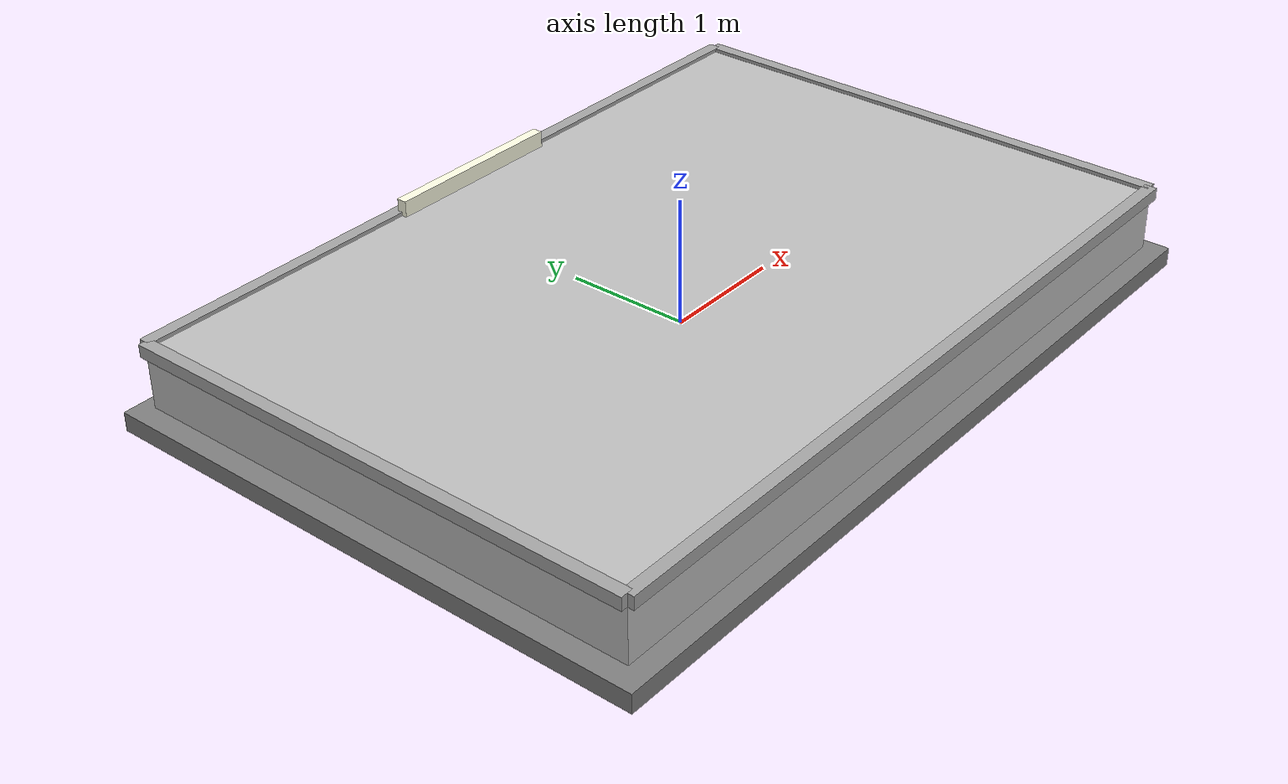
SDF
<?xml version="1.0"?>

<sdf version="1.10">

  <model name="transformer_pad">

    <static>true</static>

    <link name="link">

      <!-- CONCRETE PAD BASE -->
      <visual name="pad_main">
        <pose>0 0 0.25 0 0 0</pose>
        <geometry>
          <box>
            <size>6.2 4.2 0.5</size>
          </box>
        </geometry>
        <material>
          <ambient>0.65 0.65 0.65 1</ambient>
          <diffuse>0.75 0.75 0.75 1</diffuse>
          <specular>0.1 0.1 0.1 1</specular>
        </material>
      </visual>

      <!-- EDGE BEVELS (3D EFFECT) -->
      <visual name="edge_bevel_1">
        <pose>-3.1 0 0.48 0 0 0</pose>
        <geometry>
          <box>
            <size>0.1 4.2 0.1</size>
          </box>
        </geometry>
        <material>
          <ambient>0.55 0.55 0.55 1</ambient>
          <diffuse>0.65 0.65 0.65 1</diffuse>
        </material>
      </visual>

      <visual name="edge_bevel_2">
        <pose>3.1 0 0.48 0 0 0</pose>
        <geometry>
          <box>
            <size>0.1 4.2 0.1</size>
          </box>
        </geometry>
        <material>
          <ambient>0.55 0.55 0.55 1</ambient>
          <diffuse>0.65 0.65 0.65 1</diffuse>
        </material>
      </visual>

      <visual name="edge_bevel_3">
        <pose>0 -2.1 0.48 0 0 0</pose>
        <geometry>
          <box>
            <size>6.2 0.1 0.1</size>
          </box>
        </geometry>
        <material>
          <ambient>0.55 0.55 0.55 1</ambient>
          <diffuse>0.65 0.65 0.65 1</diffuse>
        </material>
      </visual>

      <visual name="edge_bevel_4">
        <pose>0 2.1 0.48 0 0 0</pose>
        <geometry>
          <box>
            <size>6.2 0.1 0.1</size>
          </box>
        </geometry>
        <material>
          <ambient>0.55 0.55 0.55 1</ambient>
          <diffuse>0.65 0.65 0.65 1</diffuse>
        </material>
      </visual>

      <!-- ANCHOR BOLT AREAS -->
      <visual name="anchor_bolt_1">
        <pose>-2.5 -1.5 0.35 0 0 0</pose>
        <geometry>
          <cylinder>
            <radius>0.08</radius>
            <length>0.1</length>
          </cylinder>
        </geometry>
        <material>
          <ambient>0.4 0.4 0.4 1</ambient>
          <diffuse>0.5 0.5 0.5 1</diffuse>
        </material>
      </visual>

      <visual name="anchor_bolt_2">
        <pose>2.5 -1.5 0.35 0 0 0</pose>
        <geometry>
          <cylinder>
            <radius>0.08</radius>
            <length>0.1</length>
          </cylinder>
        </geometry>
        <material>
          <ambient>0.4 0.4 0.4 1</ambient>
          <diffuse>0.5 0.5 0.5 1</diffuse>
        </material>
      </visual>

      <visual name="anchor_bolt_3">
        <pose>-2.5 1.5 0.35 0 0 0</pose>
        <geometry>
          <cylinder>
            <radius>0.08</radius>
            <length>0.1</length>
          </cylinder>
        </geometry>
        <material>
          <ambient>0.4 0.4 0.4 1</ambient>
          <diffuse>0.5 0.5 0.5 1</diffuse>
        </material>
      </visual>

      <visual name="anchor_bolt_4">
        <pose>2.5 1.5 0.35 0 0 0</pose>
        <geometry>
          <cylinder>
            <radius>0.08</radius>
            <length>0.1</length>
          </cylinder>
        </geometry>
        <material>
          <ambient>0.4 0.4 0.4 1</ambient>
          <diffuse>0.5 0.5 0.5 1</diffuse>
        </material>
      </visual>

      <!-- IDENTIFICATION MARKING -->
      <visual name="marking_area">
        <pose>0 2.05 0.48 0 0 0</pose>
        <geometry>
          <box>
            <size>1.5 0.08 0.3</size>
          </box>
        </geometry>
        <material>
          <ambient>1 1 0.8 1</ambient>
          <diffuse>1 1 0.9 1</diffuse>
        </material>
      </visual>

      <!-- OIL RETENTION BORDER -->
      <visual name="drain_sump">
        <pose>0 0 -0.1 0 0 0</pose>
        <geometry>
          <box>
            <size>6.5 4.5 0.15</size>
          </box>
        </geometry>
        <material>
          <ambient>0.4 0.4 0.4 1</ambient>
          <diffuse>0.5 0.5 0.5 1</diffuse>
        </material>
      </visual>

      <!-- COLLISION -->
      <collision name="collision">
        <pose>0 0 0.25 0 0 0</pose>
        <geometry>
          <box>
            <size>6 4 0.5</size>
          </box>
        </geometry>
      </collision>

    </link>

  </model>

</sdf>
